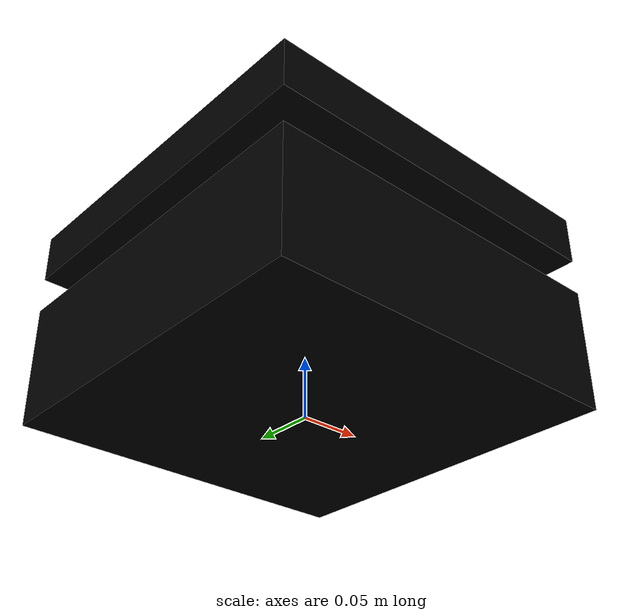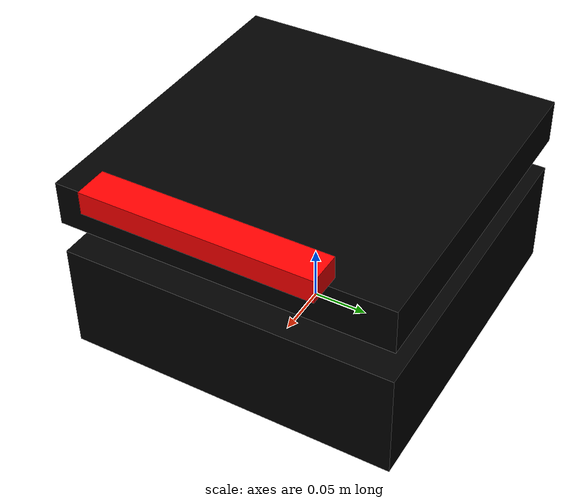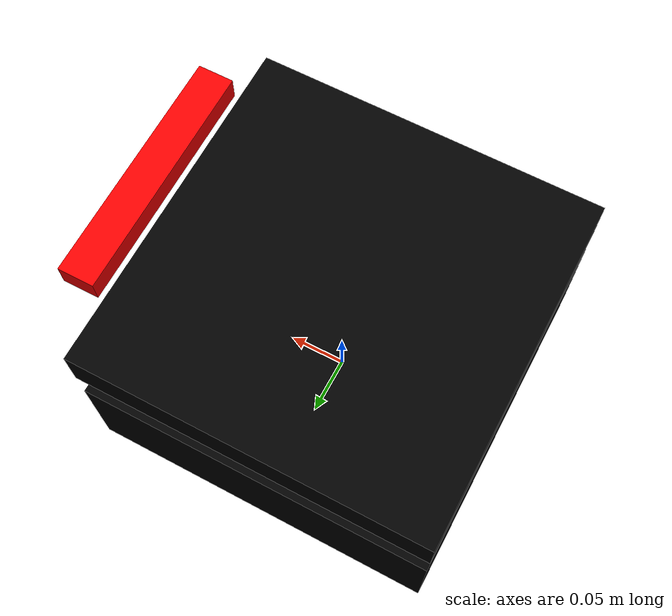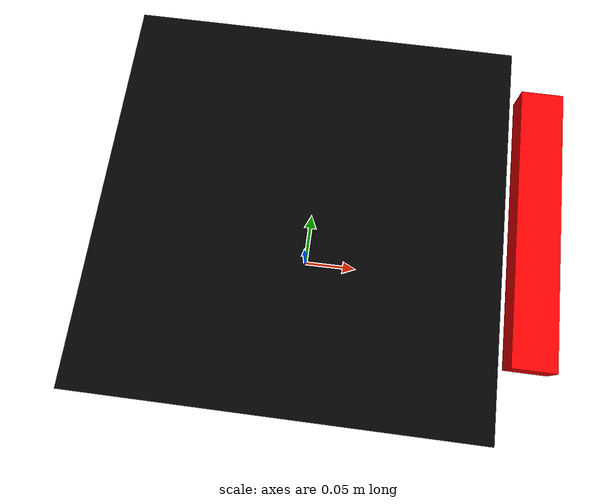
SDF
<?xml version='1.0'?>
<sdf version='1.7'>
	<model name="mirte_master">
		<static>false</static>
		<link name="base_link">  <!-- The base will consist of multiple visual and collision element, since a fixed joint does not exist:)-->
			<visual name="base_visual">
				<pose>0 0 0.05 0 0 0</pose>
				<geometry>
					<box>
						<size>0.3 0.3 0.1</size>
					</box>
					</geometry>
				<material>
					<ambient>0 0 0 1</ambient>
					<diffuse>0 0 0 1</diffuse>
					<specular>0 0 0 1</specular>
					<emissive>0 0 0 1</emissive>
				</material>
			</visual>
			<collision name="base_collision">
				<pose>0 0 0.05 0 0 0</pose>
				<geometry>
					<box>
						<size>0.3 0.3 0.1</size>
					</box>
				</geometry>
			</collision>

			<visual name="base_top_plate_visual">
				<pose>0 0 0.15 0 0 0</pose>
				<geometry>
					<box>
						<size>0.3 0.3 0.04</size>
					</box>
				</geometry>
				<material>
					<ambient>0 0 0 1</ambient>
					<diffuse>0 0 0 1</diffuse>
					<specular>0 0 0 1</specular>
					<emissive>0 0 0 1</emissive>
				</material>
			</visual>
			<collision name="base_top_plate_collision">
				<pose>0 0 0.15 0 0 0</pose>
				<geometry>
					<box>
						<size>0.3 0.3 0.04</size>
					</box>
				</geometry>
			</collision>

			<visual name="camera_visual">
				<pose>0.165 0 0.19 0 0 0</pose>
				<geometry>
					<box>
						<size>0.03 0.2 0.02</size>
					</box>
				</geometry>
				<material>
					<ambient>1 0 0 1</ambient>
					<diffuse>1 0 0 1</diffuse>
					<specular>1 0 0 1</specular>
					<emissive>0 0 0 1</emissive>
				</material>
			</visual>
			<collision name="camera_collision">
				<pose>0.165 0 0.19 0 0 0</pose>
				<geometry>
					<box>
						<size>0.03 0.2 0.02</size>
					</box>
				</geometry>
			</collision>

			<!-- The camera -->
			<sensor name="rgbcamera1" type="camera">  <!--irl it is a depth camera, but I only care about the rgb-->
				<always_on>1</always_on>
				<update_rate>5</update_rate>
				<visualize>true</visualize>
				<topic>mirte_cam</topic>
				<pose>0.18 0 0.19 0 0 0</pose>  <!-- translated to be at the actual camera-->
				<camera>
					<horizontal_fov>1.04</horizontal_fov>
					<image>
						<width>800</width>
						<height>800</height>
					</image>
					<clip>
						<near>0.1</near>
						<far>100</far>
					</clip>
					<save enabled="False">
						<path>/home/swaltmann/mirte_ws/src/mirte-ros-packages/mirte_efficient_capsnet/sim/images</path>
					</save>
				</camera>
			</sensor>

			<inertial>
				<mass>1</mass> <!-- Just a placeholder, not relevant for me -->
				<ixx>1</ixx>
				<iyy>1</iyy>
				<izz>1</izz>
				<ixy>0</ixy>
				<ixz>0</ixz>
				<iyx>0</iyx>
				<iyz>0</iyz>
				<izy>0</izy>
				<izx>0</izx>
			</inertial>
		</link>

	</model>
</sdf>
